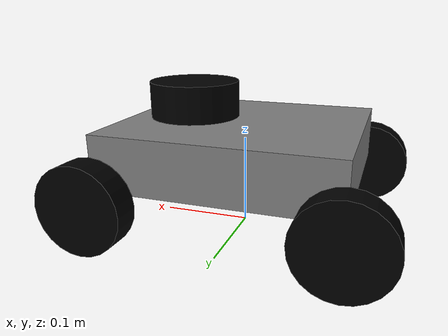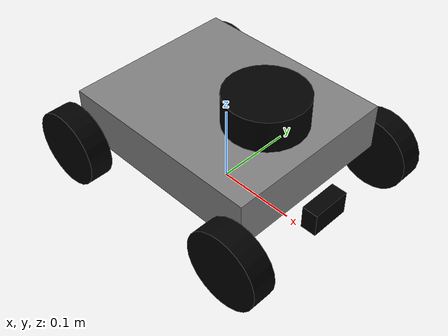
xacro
<?xml version="1.0"?>
<robot name="my_robot" xmlns:xacro="http://ros.org/wiki/xacro">

  <!-- Robot parameters -->
  <xacro:property name="wheelbase" value="0.26"/>
  <xacro:property name="track" value="0.25"/>
  <xacro:property name="wheel_radius" value="0.0485"/>
  <xacro:property name="wheel_width" value="0.03"/>
  <xacro:property name="wheel_axis" value="0 1 0"/>

  <material name="black">
    <color rgba="0 0 0 1"/>
  </material>

  <!-- Base link -->
  <link name="base_link">
      <visual name="base_visual">
        <geometry>
          <box size="${wheelbase} ${track - wheel_width} 0.06"/>
        </geometry>
        <origin xyz="0 0 ${(wheel_radius + 0.042)}" rpy="0 0 0"/>
        <material name="gray">
          <color rgba="0.5 0.5 0.5 1.0"/>
        </material>
      </visual>
  </link>

  <!-- Laser frame attached directly to base_link -->
  <joint name="laser_joint" type="fixed">
    <parent link="base_link"/>
    <child link="laser_frame"/>
    <origin xyz="0.06 0 0.142" rpy="0 0 0"/>
  </joint>

  <link name="laser_frame">
    <visual>
      <geometry>
        <cylinder radius="0.05" length="0.04"/>
      </geometry>
      <material name="black"/>
    </visual>
  </link>

  <!-- Camera Joint -->
  <joint name="camera_joint" type="fixed">
    <parent link="base_link"/>
    <child link="camera_link"/>
    <origin xyz="${wheelbase/2 + 0.02} 0 0.05" rpy="0 0 0"/>
  </joint>

  <!-- Camera Link -->
  <link name="camera_link">
    <visual>
      <geometry>
        <box size="0.02 0.05 0.03"/>
      </geometry>
      <material name="black"/>
    </visual>
  </link>

  <!-- Wheel macro -->
  <xacro:macro name="wheel" params="name parent x y z r p yv">
    <link name="${name}">
      <visual>
        <geometry>
          <cylinder radius="${wheel_radius}" length="${wheel_width}"/>
        </geometry>
        <origin xyz="0 0 0" rpy="1.5708 0 0"/>
        <material name="black"/>
      </visual>
    </link>
    <joint name="${name}_joint" type="continuous">
      <parent link="${parent}"/>
      <child link="${name}"/>
      <origin xyz="${x} ${y} ${z}" rpy="${r} ${p} ${yv}"/>
      <axis xyz="${wheel_axis}"/>
    </joint>
  </xacro:macro>

  <!-- Instantiate wheels -->
  <xacro:wheel name="wheel_fl" parent="base_link" x="${wheelbase/2}" y="${track/2}" z="${wheel_radius}" r="0" p="0" yv="0"/>
  <xacro:wheel name="wheel_fr" parent="base_link" x="${wheelbase/2}" y="${-track/2}" z="${wheel_radius}" r="0" p="0" yv="0"/>
  <xacro:wheel name="wheel_rl" parent="base_link" x="${-wheelbase/2}" y="${track/2}" z="${wheel_radius}" r="0" p="0" yv="0"/>
  <xacro:wheel name="wheel_rr" parent="base_link" x="${-wheelbase/2}" y="${-track/2}" z="${wheel_radius}" r="0" p="0" yv="0"/>

</robot>
